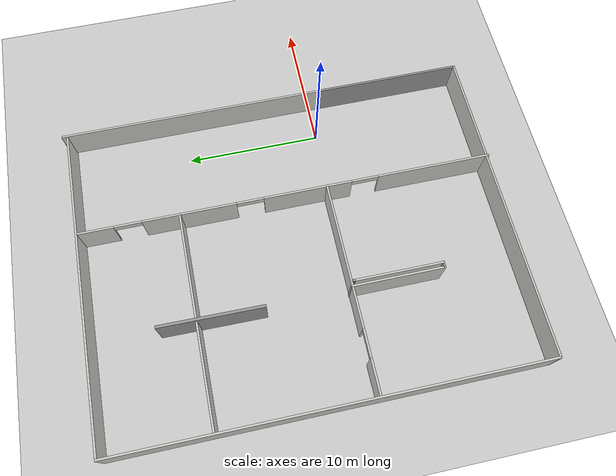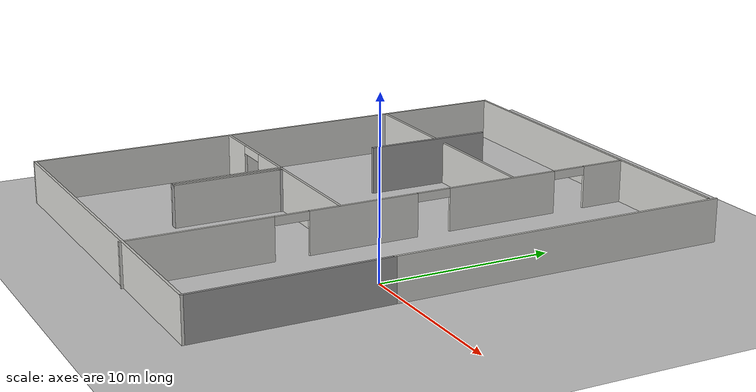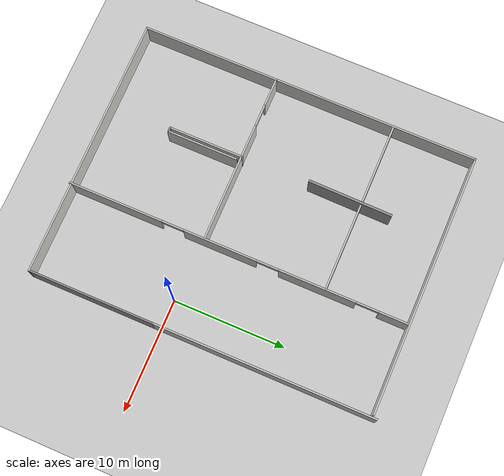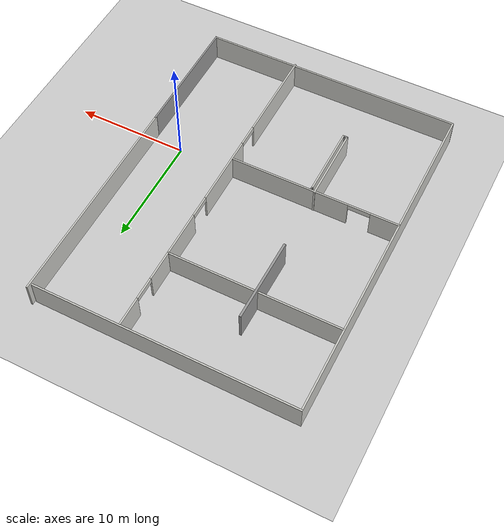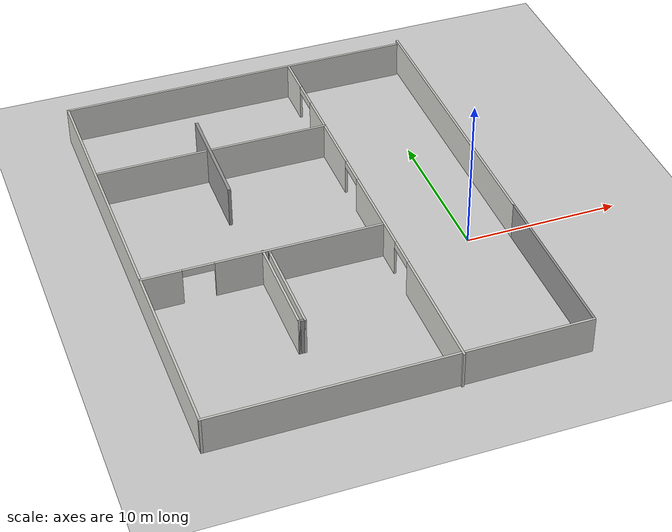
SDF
<sdf version="1.6">
 <world name="default">
  <light name="sun" type="directional">
   <pose>0 0 10 0 -0 0</pose>
   <diffuse>0.8 0.8 0.8 1</diffuse>
   <specular>0.2 0.2 0.2 1</specular>
   <attenuation>
    <range>1000</range>
    <constant>0.9</constant>
    <linear>0.01</linear>
    <quadratic>0.001</quadratic>
   </attenuation>
   <direction>-0.5 0.1 -0.9</direction>
  </light>
  <model name="ground_plane">
   <static>1</static>
   <link name="link">
    <collision name="collision">
     <geometry><plane><normal>0 0 1</normal><size>100 100</size></plane></geometry>
     <surface><friction><ode><mu>100</mu><mu2>50</mu2></ode></friction></surface>
    </collision>
    <visual name="visual">
     <cast_shadows>0</cast_shadows>
     <geometry><plane><normal>0 0 1</normal><size>100 100</size></plane></geometry>
     <material>
      <script><uri>file://media/materials/scripts/gazebo.material</uri><name>Gazebo/Grey</name></script>
     </material>
    </visual>
   </link>
  </model>
  <gravity>0 0 -9.8</gravity>
  <magnetic_field>6e-06 2.3e-05 -4.2e-05</magnetic_field>
  <atmosphere type="adiabatic"/>
  <physics name="default_physics" default="0" type="ode">
   <max_step_size>0.001</max_step_size>
   <real_time_factor>1</real_time_factor>
   <real_time_update_rate>1000</real_time_update_rate>
  </physics>
  <scene><ambient>0.4 0.4 0.4 1</ambient><background>0.7 0.7 0.7 1</background><shadows>1</shadows></scene>
  <spherical_coordinates>
   <surface_model>EARTH_WGS84</surface_model>
   <latitude_deg>0</latitude_deg>
   <longitude_deg>0</longitude_deg>
   <elevation>0</elevation>
   <heading_deg>0</heading_deg>
  </spherical_coordinates>
  <model name="sample_corridor">
   <pose>-8.96653 3.61043 0 0 -0 0</pose>
   <link name="Wall_11">
    <pose>3.57956 -0.242166 0 0 -0 -1.5708</pose>
    <visual name="Wall_11_Visual_0">
     <pose>-13.9508 0 1.25 0 -0 0</pose>
     <geometry><box><size>2.59837 0.15 2.5</size></box></geometry>
     <material>
      <script><uri>file://media/materials/scripts/gazebo.material</uri><name>Gazebo/CeilingTiled</name></script>
      <ambient>1 1 1 1</ambient>
     </material>
     <meta><layer>0</layer></meta>
    </visual>
    <collision name="Wall_11_Collision_0">
     <geometry><box><size>2.59837 0.15 2.5</size></box></geometry>
     <pose>-13.9508 0 1.25 0 -0 0</pose>
    </collision>
    <visual name="Wall_11_Visual_1">
     <pose>-7.22483 0 1.25 0 -0 0</pose>
     <geometry><box><size>6.85361 0.15 2.5</size></box></geometry>
     <material>
      <script><uri>file://media/materials/scripts/gazebo.material</uri><name>Gazebo/CeilingTiled</name></script>
      <ambient>1 1 1 1</ambient>
     </material>
     <meta><layer>0</layer></meta>
    </visual>
    <collision name="Wall_11_Collision_1">
     <geometry><box><size>6.85361 0.15 2.5</size></box></geometry>
     <pose>-7.22483 0 1.25 0 -0 0</pose>
    </collision>
    <visual name="Wall_11_Visual_2">
     <pose>1.47552 0 1.25 0 -0 0</pose>
     <geometry><box><size>6.54709 0.15 2.5</size></box></geometry>
     <material>
      <script><uri>file://media/materials/scripts/gazebo.material</uri><name>Gazebo/CeilingTiled</name></script>
      <ambient>1 1 1 1</ambient>
     </material>
     <meta><layer>0</layer></meta>
    </visual>
    <collision name="Wall_11_Collision_2">
     <geometry><box><size>6.54709 0.15 2.5</size></box></geometry>
     <pose>1.47552 0 1.25 0 -0 0</pose>
    </collision>
    <visual name="Wall_11_Visual_3">
     <pose>10.9995 0 1.25 0 -0 0</pose>
     <geometry><box><size>8.50094 0.15 2.5</size></box></geometry>
     <material>
      <script><uri>file://media/materials/scripts/gazebo.material</uri><name>Gazebo/CeilingTiled</name></script>
      <ambient>1 1 1 1</ambient>
     </material>
     <meta><layer>0</layer></meta>
    </visual>
    <collision name="Wall_11_Collision_3">
     <geometry><box><size>8.50094 0.15 2.5</size></box></geometry>
     <pose>10.9995 0 1.25 0 -0 0</pose>
    </collision>
    <visual name="Wall_11_Visual_4">
     <pose>-11.6516 0 2.25 0 -0 0</pose>
     <geometry><box><size>2 0.15 0.5</size></box></geometry>
     <material>
      <script><uri>file://media/materials/scripts/gazebo.material</uri><name>Gazebo/CeilingTiled</name></script>
      <ambient>1 1 1 1</ambient>
     </material>
     <meta><layer>0</layer></meta>
    </visual>
    <collision name="Wall_11_Collision_4">
     <geometry><box><size>2 0.15 0.5</size></box></geometry>
     <pose>-11.6516 0 2.25 0 -0 0</pose>
    </collision>
    <visual name="Wall_11_Visual_5">
     <pose>-2.79803 0 2.25 0 -0 0</pose>
     <geometry><box><size>2 0.15 0.5</size></box></geometry>
     <material>
      <script><uri>file://media/materials/scripts/gazebo.material</uri><name>Gazebo/CeilingTiled</name></script>
      <ambient>1 1 1 1</ambient>
     </material>
     <meta><layer>0</layer></meta>
    </visual>
    <collision name="Wall_11_Collision_5">
     <geometry><box><size>2 0.15 0.5</size></box></geometry>
     <pose>-2.79803 0 2.25 0 -0 0</pose>
    </collision>
    <visual name="Wall_11_Visual_6">
     <pose>5.74906 0 2.25 0 -0 0</pose>
     <geometry><box><size>2 0.15 0.5</size></box></geometry>
     <material>
      <script><uri>file://media/materials/scripts/gazebo.material</uri><name>Gazebo/CeilingTiled</name></script>
      <ambient>1 1 1 1</ambient>
     </material>
     <meta><layer>0</layer></meta>
    </visual>
    <collision name="Wall_11_Collision_6">
     <geometry><box><size>2 0.15 0.5</size></box></geometry>
     <pose>5.74906 0 2.25 0 -0 0</pose>
    </collision>
   </link>
   <link name="Wall_16">
    <pose>-4.07742 -3.13194 0 0 -0 0</pose>
    <visual name="Wall_16_Visual_0">
     <pose>-6.3491 0 1.25 0 -0 0</pose>
     <geometry><box><size>2.55181 0.15 2.5</size></box></geometry>
     <material>
      <script><uri>file://media/materials/scripts/gazebo.material</uri><name>Gazebo/CeilingTiled</name></script>
      <ambient>1 1 1 1</ambient>
     </material>
     <meta><layer>0</layer></meta>
    </visual>
    <collision name="Wall_16_Collision_0">
     <geometry><box><size>2.55181 0.15 2.5</size></box></geometry>
     <pose>-6.3491 0 1.25 0 -0 0</pose>
    </collision>
    <visual name="Wall_16_Visual_1">
     <pose>2.2759 0 1.25 0 -0 0</pose>
     <geometry><box><size>10.6982 0.15 2.5</size></box></geometry>
     <material>
      <script><uri>file://media/materials/scripts/gazebo.material</uri><name>Gazebo/CeilingTiled</name></script>
      <ambient>1 1 1 1</ambient>
     </material>
     <meta><layer>0</layer></meta>
    </visual>
    <collision name="Wall_16_Collision_1">
     <geometry><box><size>10.6982 0.15 2.5</size></box></geometry>
     <pose>2.2759 0 1.25 0 -0 0</pose>
    </collision>
    <visual name="Wall_16_Visual_2">
     <pose>-4.07319 0 2.25 0 -0 0</pose>
     <geometry><box><size>2 0.15 0.5</size></box></geometry>
     <material>
      <script><uri>file://media/materials/scripts/gazebo.material</uri><name>Gazebo/CeilingTiled</name></script>
      <ambient>1 1 1 1</ambient>
     </material>
     <meta><layer>0</layer></meta>
    </visual>
    <collision name="Wall_16_Collision_2">
     <geometry><box><size>2 0.15 0.5</size></box></geometry>
     <pose>-4.07319 0 2.25 0 -0 0</pose>
    </collision>
   </link>
   <link name="Wall_18">
    <collision name="Wall_18_Collision">
     <geometry><box><size>15.25 0.15 2.5</size></box></geometry>
     <pose>0 0 1.25 0 -0 0</pose>
    </collision>
    <visual name="Wall_18_Visual">
     <pose>0 0 1.25 0 -0 0</pose>
     <geometry><box><size>15.25 0.15 2.5</size></box></geometry>
     <material>
      <script><uri>file://media/materials/scripts/gazebo.material</uri><name>Gazebo/CeilingTiled</name></script>
      <ambient>1 1 1 1</ambient>
     </material>
     <meta><layer>0</layer></meta>
    </visual>
    <pose>-4.02017 7.68757 0 0 -0 0</pose>
   </link>
   <link name="Wall_20">
    <collision name="Wall_20_Collision">
     <geometry><box><size>6.75 0.15 2.5</size></box></geometry>
     <pose>0 0 1.25 0 -0 0</pose>
    </collision>
    <visual name="Wall_20_Visual">
     <pose>0 0 1.25 0 -0 0</pose>
     <geometry><box><size>6.75 0.15 2.5</size></box></geometry>
     <material>
      <script><uri>file://media/materials/scripts/gazebo.material</uri><name>Gazebo/CeilingTiled</name></script>
      <ambient>1 1 1 1</ambient>
     </material>
     <meta><layer>0</layer></meta>
    </visual>
    <pose>-4.14065 -6.39175 0 0 -0 -1.5708</pose>
   </link>
   <link name="Wall_23">
    <collision name="Wall_23_Collision">
     <geometry><box><size>0.5 0.15 2.5</size></box></geometry>
     <pose>0 0 1.25 0 -0 0</pose>
    </collision>
    <visual name="Wall_23_Visual">
     <pose>0 0 1.25 0 -0 0</pose>
     <geometry><box><size>0.5 0.15 2.5</size></box></geometry>
     <material>
      <script><uri>file://media/materials/scripts/gazebo.material</uri><name>Gazebo/Grey</name></script>
      <ambient>1 1 1 1</ambient>
     </material>
     <meta><layer>0</layer></meta>
    </visual>
    <pose>-3.96565 -9.69175 0 0 -0 0</pose>
   </link>
   <link name="Wall_24">
    <collision name="Wall_24_Collision">
     <geometry><box><size>6.5 0.15 2.5</size></box></geometry>
     <pose>0 0 1.25 0 -0 0</pose>
    </collision>
    <visual name="Wall_24_Visual">
     <pose>0 0 1.25 0 -0 0</pose>
     <geometry><box><size>6.5 0.15 2.5</size></box></geometry>
     <material>
      <script><uri>file://media/materials/scripts/gazebo.material</uri><name>Gazebo/CeilingTiled</name></script>
      <ambient>1 1 1 1</ambient>
     </material>
     <meta><layer>0</layer></meta>
    </visual>
    <pose>-3.79065 -6.51675 0 0 -0 1.5708</pose>
   </link>
   <link name="Wall_25">
    <collision name="Wall_25_Collision">
     <geometry><box><size>0.25 0.15 2.5</size></box></geometry>
     <pose>0 0 1.25 0 -0 0</pose>
    </collision>
    <visual name="Wall_25_Visual">
     <pose>0 0 1.25 0 -0 0</pose>
     <geometry><box><size>0.25 0.15 2.5</size></box></geometry>
     <material>
      <script><uri>file://media/materials/scripts/gazebo.material</uri><name>Gazebo/Grey</name></script>
      <ambient>1 1 1 1</ambient>
     </material>
     <meta><layer>0</layer></meta>
    </visual>
    <pose>-3.77771 -3.29345 0 0 -0 1.309</pose>
   </link>
   <link name="Wall_4">
    <collision name="Wall_4_Collision">
     <geometry><box><size>19.75 0.15 2.5</size></box></geometry>
     <pose>0 0 1.25 0 -0 0</pose>
    </collision>
    <visual name="Wall_4_Visual">
     <pose>0 0 1.25 0 -0 0</pose>
     <geometry><box><size>19.75 0.15 2.5</size></box></geometry>
     <material>
      <script><uri>file://media/materials/scripts/gazebo.material</uri><name>Gazebo/CeilingTiled</name></script>
      <ambient>1 1 1 1</ambient>
     </material>
     <meta><layer>0</layer></meta>
    </visual>
    <pose>11.675 5.61717 0 0 -0 -1.5708</pose>
   </link>
   <link name="Wall_6">
    <collision name="Wall_6_Collision">
     <geometry><box><size>11.25 0.15 2.5</size></box></geometry>
     <pose>0 0 1.25 0 -0 0</pose>
    </collision>
    <visual name="Wall_6_Visual">
     <pose>0 0 1.25 0 -0 0</pose>
     <geometry><box><size>11.25 0.15 2.5</size></box></geometry>
     <material>
      <script><uri>file://media/materials/scripts/gazebo.material</uri><name>Gazebo/Grey</name></script>
      <ambient>1 1 1 1</ambient>
     </material>
     <meta><layer>0</layer></meta>
    </visual>
    <pose>11.675 -9.73283 0 0 -0 -1.5708</pose>
   </link>
   <link name="Wall_7">
    <collision name="Wall_7_Collision">
     <geometry><box><size>23.5 0.15 2.5</size></box></geometry>
     <pose>0 0 1.25 0 -0 0</pose>
    </collision>
    <visual name="Wall_7_Visual">
     <pose>0 0 1.25 0 -0 0</pose>
     <geometry><box><size>23.5 0.15 2.5</size></box></geometry>
     <material>
      <script><uri>file://media/materials/scripts/gazebo.material</uri><name>Gazebo/CeilingTiled</name></script>
      <ambient>1 1 1 1</ambient>
     </material>
     <meta><layer>0</layer></meta>
    </visual>
    <pose>0 -15.2828 0 0 -0 3.14159</pose>
   </link>
   <link name="Wall_8">
    <collision name="Wall_8_Collision">
     <geometry><box><size>30.5 0.15 2.5</size></box></geometry>
     <pose>0 0 1.25 0 -0 0</pose>
    </collision>
    <visual name="Wall_8_Visual">
     <pose>0 0 1.25 0 -0 0</pose>
     <geometry><box><size>30.5 0.15 2.5</size></box></geometry>
     <material>
      <script><uri>file://media/materials/scripts/gazebo.material</uri><name>Gazebo/CeilingTiled</name></script>
      <ambient>1 1 1 1</ambient>
     </material>
     <meta><layer>0</layer></meta>
    </visual>
    <pose>-11.675 -0.107833 0 0 -0 1.5708</pose>
   </link>
   <link name="Wall_9">
    <collision name="Wall_9_Collision">
     <geometry><box><size>23.25 0.15 2.5</size></box></geometry>
     <pose>0 0 1.25 0 -0 0</pose>
    </collision>
    <visual name="Wall_9_Visual">
     <pose>0 0 1.25 0 -0 0</pose>
     <geometry><box><size>23.25 0.15 2.5</size></box></geometry>
     <material>
      <script><uri>file://media/materials/scripts/gazebo.material</uri><name>Gazebo/CeilingTiled</name></script>
      <ambient>1 1 1 1</ambient>
     </material>
     <meta><layer>0</layer></meta>
    </visual>
    <pose>-0.125 15.0672 0 0 -0 0</pose>
   </link>
   <static>1</static>
  </model>
  <model name="grey_wall">
   <static>1</static>
   <link name="link">
    <pose>0 0 1.4 0 -0 0</pose>
    <collision name="collision"><geometry><box><size>7.5 0.2 2.8</size></box></geometry></collision>
    <visual name="visual">
     <cast_shadows>0</cast_shadows>
     <geometry><box><size>7.5 0.2 2.8</size></box></geometry>
     <material>
      <script>
       <uri>model://grey_wall/materials/scripts</uri>
       <uri>model://grey_wall/materials/textures</uri>
       <name>vrc/grey_wall</name>
      </script>
     </material>
    </visual>
   </link>
   <pose>-13.2804 10.2717 0 0 0 -1.58304</pose>
  </model>
 </world>
</sdf>
